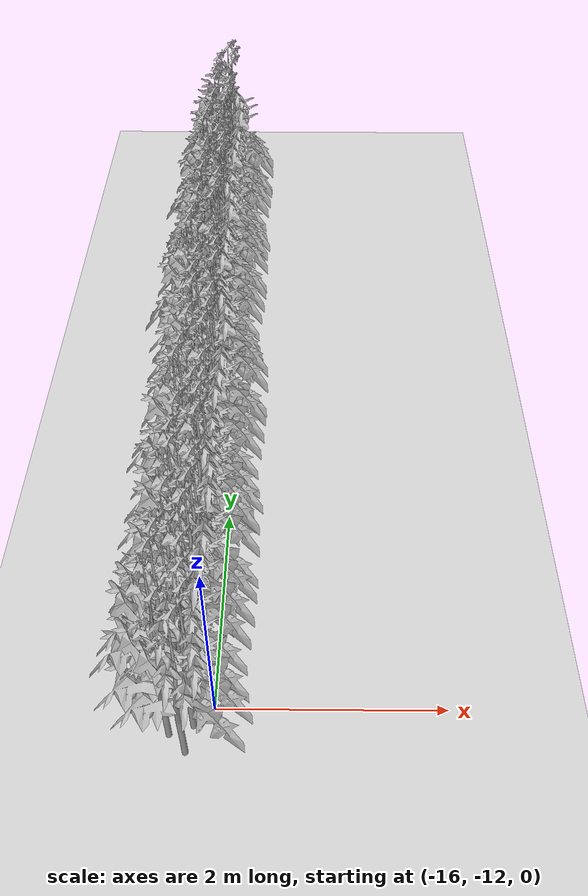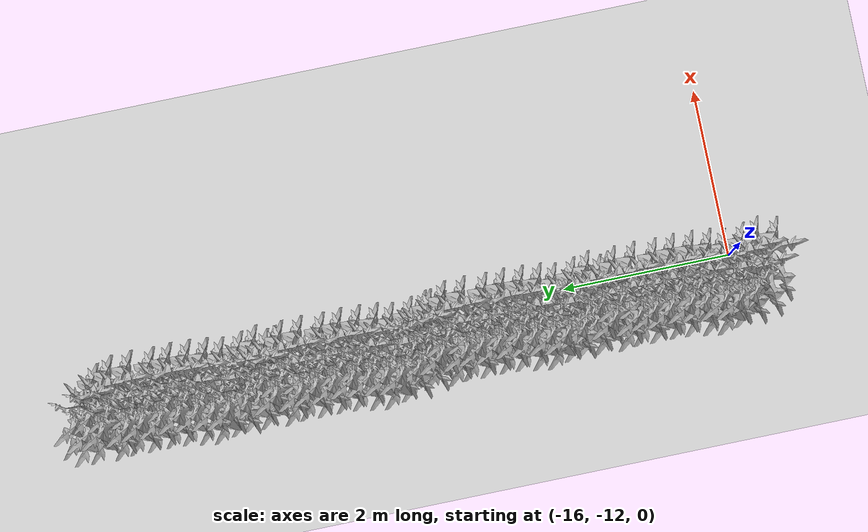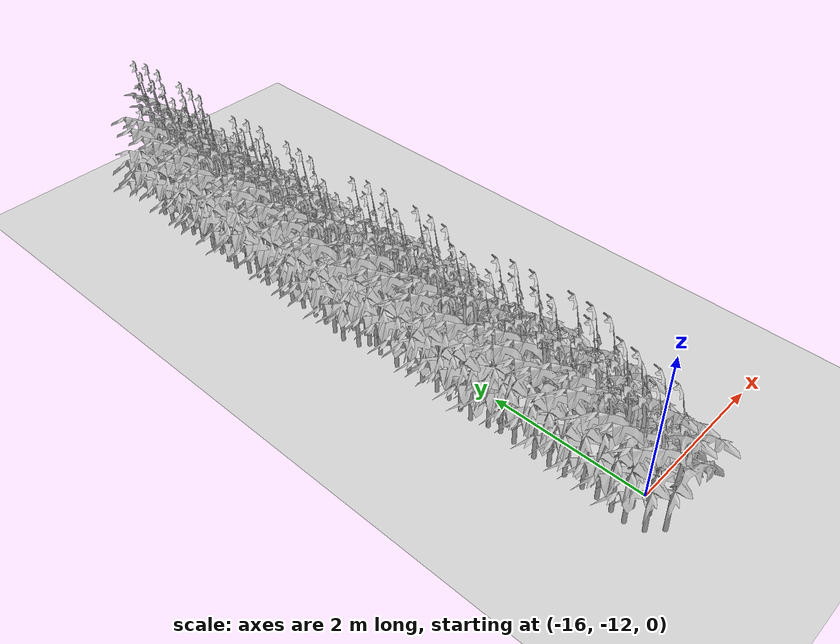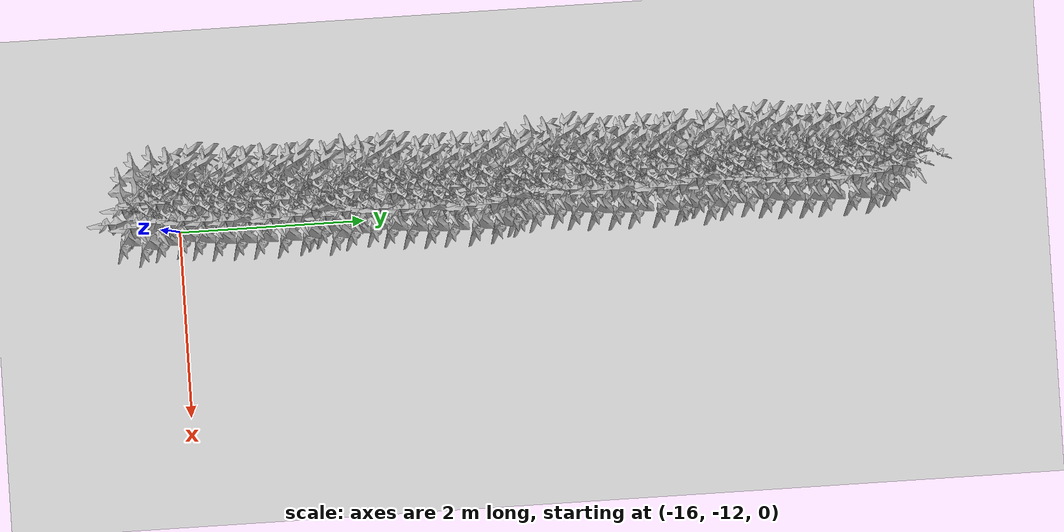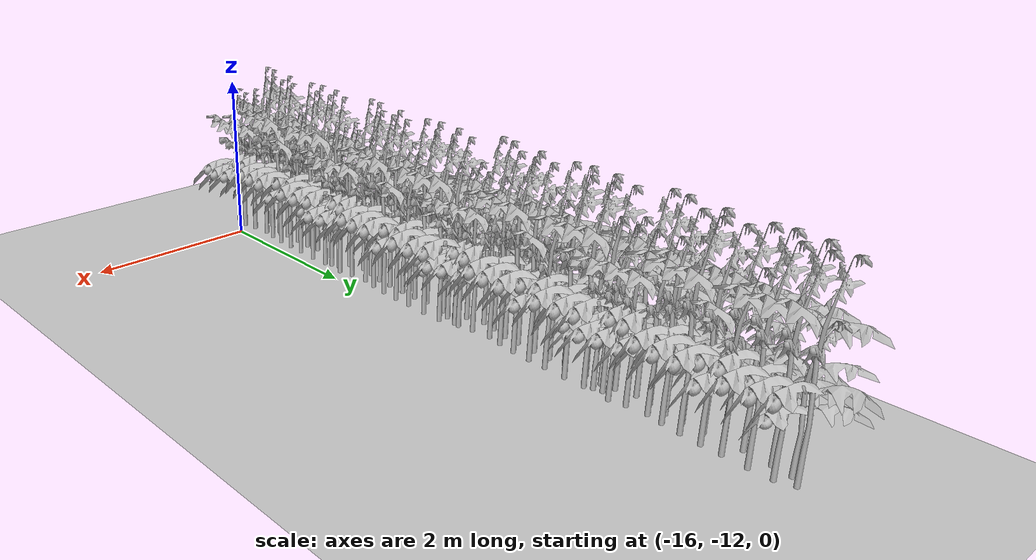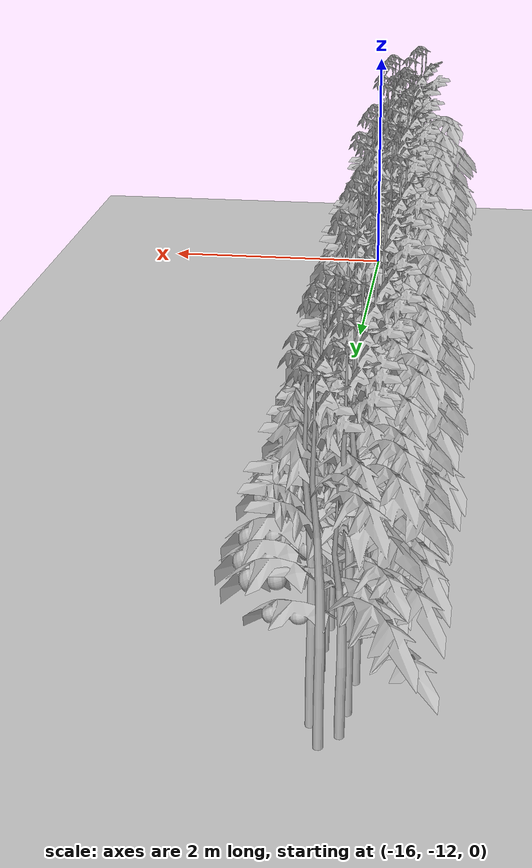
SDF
<sdf version="1.6">
 <world name="default">
  <model name="ground_plane">
   <static>1</static>
   <link name="link">
    <collision name="collision">
     <geometry><plane><normal>0 0 1</normal><size>100 100</size></plane></geometry>
     <surface>
      <contact><collide_bitmask>65535</collide_bitmask></contact>
      <friction><ode><mu>100</mu><mu2>50</mu2></ode></friction>
     </surface>
    </collision>
    <visual name="visual">
     <cast_shadows>0</cast_shadows>
     <geometry><plane><normal>0 0 1</normal><size>100 100</size></plane></geometry>
     <material>
      <script><uri>file://media/materials/scripts/gazebo.material</uri><name>Gazebo/Grey</name></script>
     </material>
    </visual>
   </link>
  </model>
  <model name="MIddle_Plant_3">
   <model name="MIddle_Plant_1">
    <model name="tomato_plant_big">
     <static>1</static>
     <link name="link">
      <collision name="collision">
       <pose>0 0 0 1.5708 -0 0</pose>
       <geometry><mesh><scale>0.5 0.6 0.5</scale><uri>model://stick/meshes/stick.dae</uri></mesh></geometry>
      </collision>
      <visual name="visual">
       <geometry>
        <mesh><scale>5e-06 5e-06 7e-06</scale><uri>model://tomato_plant_big/meshes/tomato-plant.dae</uri></mesh>
       </geometry>
      </visual>
     </link>
     <pose>-0.144318 -0.693607 -0 0 -0 0</pose>
    </model>
    <model name="tomato_plant_big_0">
     <static>1</static>
     <link name="link">
      <collision name="collision">
       <pose>0 0 0 1.5708 -0 0</pose>
       <geometry><mesh><scale>0.5 0.6 0.5</scale><uri>model://stick/meshes/stick.dae</uri></mesh></geometry>
      </collision>
      <visual name="visual">
       <geometry>
        <mesh><scale>5e-06 5e-06 7e-06</scale><uri>model://tomato_plant_big/meshes/tomato-plant.dae</uri></mesh>
       </geometry>
      </visual>
     </link>
     <pose>-0.11784 -0.519827 0 0 -0 0</pose>
    </model>
    <model name="tomato_plant_big_1">
     <static>1</static>
     <link name="link">
      <collision name="collision">
       <pose>0 0 0 1.5708 -0 0</pose>
       <geometry><mesh><scale>0.5 0.6 0.5</scale><uri>model://stick/meshes/stick.dae</uri></mesh></geometry>
      </collision>
      <visual name="visual">
       <geometry>
        <mesh><scale>5e-06 5e-06 7e-06</scale><uri>model://tomato_plant_big/meshes/tomato-plant.dae</uri></mesh>
       </geometry>
      </visual>
     </link>
     <pose>0.073755 -0.247584 0 0 -0 0</pose>
    </model>
    <model name="tomato_plant_big_10">
     <static>1</static>
     <link name="link">
      <collision name="collision">
       <pose>0 0 0 1.5708 -0 0</pose>
       <geometry><mesh><scale>0.5 0.6 0.5</scale><uri>model://stick/meshes/stick.dae</uri></mesh></geometry>
      </collision>
      <visual name="visual">
       <geometry>
        <mesh><scale>5e-06 5e-06 7e-06</scale><uri>model://tomato_plant_big/meshes/tomato-plant.dae</uri></mesh>
       </geometry>
      </visual>
     </link>
     <pose>0.037052 1.07094 0 0 -0 0</pose>
    </model>
    <model name="tomato_plant_big_2">
     <static>1</static>
     <link name="link">
      <collision name="collision">
       <pose>0 0 0 1.5708 -0 0</pose>
       <geometry><mesh><scale>0.5 0.6 0.5</scale><uri>model://stick/meshes/stick.dae</uri></mesh></geometry>
      </collision>
      <visual name="visual">
       <geometry>
        <mesh><scale>5e-06 5e-06 7e-06</scale><uri>model://tomato_plant_big/meshes/tomato-plant.dae</uri></mesh>
       </geometry>
      </visual>
     </link>
     <pose>-0.076926 -0.131165 0 0 -0 0</pose>
    </model>
    <model name="tomato_plant_big_3">
     <static>1</static>
     <link name="link">
      <collision name="collision">
       <pose>0 0 0 1.5708 -0 0</pose>
       <geometry><mesh><scale>0.5 0.6 0.5</scale><uri>model://stick/meshes/stick.dae</uri></mesh></geometry>
      </collision>
      <visual name="visual">
       <geometry>
        <mesh><scale>5e-06 5e-06 7e-06</scale><uri>model://tomato_plant_big/meshes/tomato-plant.dae</uri></mesh>
       </geometry>
      </visual>
     </link>
     <pose>0.093714 -0.038386 0 0 -0 0</pose>
    </model>
    <model name="tomato_plant_big_4">
     <static>1</static>
     <link name="link">
      <collision name="collision">
       <pose>0 0 0 1.5708 -0 0</pose>
       <geometry><mesh><scale>0.5 0.6 0.5</scale><uri>model://stick/meshes/stick.dae</uri></mesh></geometry>
      </collision>
      <visual name="visual">
       <geometry>
        <mesh><scale>5e-06 5e-06 7e-06</scale><uri>model://tomato_plant_big/meshes/tomato-plant.dae</uri></mesh>
       </geometry>
      </visual>
     </link>
     <pose>0.103117 0.184356 0 0 -0 0</pose>
    </model>
    <model name="tomato_plant_big_5">
     <static>1</static>
     <link name="link">
      <collision name="collision">
       <pose>0 0 0 1.5708 -0 0</pose>
       <geometry><mesh><scale>0.5 0.6 0.5</scale><uri>model://stick/meshes/stick.dae</uri></mesh></geometry>
      </collision>
      <visual name="visual">
       <geometry>
        <mesh><scale>5e-06 5e-06 7e-06</scale><uri>model://tomato_plant_big/meshes/tomato-plant.dae</uri></mesh>
       </geometry>
      </visual>
     </link>
     <pose>-0.074883 0.301479 0 0 -0 0</pose>
    </model>
    <model name="tomato_plant_big_6">
     <static>1</static>
     <link name="link">
      <collision name="collision">
       <pose>0 0 0 1.5708 -0 0</pose>
       <geometry><mesh><scale>0.5 0.6 0.5</scale><uri>model://stick/meshes/stick.dae</uri></mesh></geometry>
      </collision>
      <visual name="visual">
       <geometry>
        <mesh><scale>5e-06 5e-06 7e-06</scale><uri>model://tomato_plant_big/meshes/tomato-plant.dae</uri></mesh>
       </geometry>
      </visual>
     </link>
     <pose>-0.096921 0.484007 0 0 -0 0</pose>
    </model>
    <model name="tomato_plant_big_7">
     <static>1</static>
     <link name="link">
      <collision name="collision">
       <pose>0 0 0 1.5708 -0 0</pose>
       <geometry><mesh><scale>0.5 0.6 0.5</scale><uri>model://stick/meshes/stick.dae</uri></mesh></geometry>
      </collision>
      <visual name="visual">
       <geometry>
        <mesh><scale>5e-06 5e-06 7e-06</scale><uri>model://tomato_plant_big/meshes/tomato-plant.dae</uri></mesh>
       </geometry>
      </visual>
     </link>
     <pose>0.107491 0.653976 0 0 -0 0</pose>
    </model>
    <model name="tomato_plant_big_8">
     <static>1</static>
     <link name="link">
      <collision name="collision">
       <pose>0 0 0 1.5708 -0 0</pose>
       <geometry><mesh><scale>0.5 0.6 0.5</scale><uri>model://stick/meshes/stick.dae</uri></mesh></geometry>
      </collision>
      <visual name="visual">
       <geometry>
        <mesh><scale>5e-06 5e-06 7e-06</scale><uri>model://tomato_plant_big/meshes/tomato-plant.dae</uri></mesh>
       </geometry>
      </visual>
     </link>
     <pose>-0.07985 0.768549 0 0 -0 0</pose>
    </model>
    <model name="tomato_plant_big_9">
     <static>1</static>
     <link name="link">
      <collision name="collision">
       <pose>0 0 0 1.5708 -0 0</pose>
       <geometry><mesh><scale>0.5 0.6 0.5</scale><uri>model://stick/meshes/stick.dae</uri></mesh></geometry>
      </collision>
      <visual name="visual">
       <geometry>
        <mesh><scale>5e-06 5e-06 7e-06</scale><uri>model://tomato_plant_big/meshes/tomato-plant.dae</uri></mesh>
       </geometry>
      </visual>
     </link>
     <pose>0.098361 0.890852 0 0 -0 0</pose>
    </model>
    <model name="tomato_plant_medium">
     <static>1</static>
     <link name="link">
      <collision name="collision">
       <pose>0 0 0 1.5708 -0 0</pose>
       <geometry><mesh><scale>0.5 0.5 0.5</scale><uri>model://stick/meshes/stick.dae</uri></mesh></geometry>
      </collision>
      <visual name="visual">
       <geometry>
        <mesh><scale>5e-06 5e-06 6e-06</scale><uri>model://tomato_plant_medium/meshes/tomato-plant.dae</uri></mesh>
       </geometry>
      </visual>
     </link>
     <pose>0.056913 -1.05328 0 0 -0 0</pose>
    </model>
    <model name="tomato_plant_medium_0">
     <static>1</static>
     <link name="link">
      <collision name="collision">
       <pose>0 0 0 1.5708 -0 0</pose>
       <geometry><mesh><scale>0.5 0.5 0.5</scale><uri>model://stick/meshes/stick.dae</uri></mesh></geometry>
      </collision>
      <visual name="visual">
       <geometry>
        <mesh><scale>5e-06 5e-06 6e-06</scale><uri>model://tomato_plant_medium/meshes/tomato-plant.dae</uri></mesh>
       </geometry>
      </visual>
     </link>
     <pose>-0.092719 -0.905729 0 0 -0 0</pose>
    </model>
    <model name="tomato_plant_medium_1">
     <static>1</static>
     <link name="link">
      <collision name="collision">
       <pose>0 0 0 1.5708 -0 0</pose>
       <geometry><mesh><scale>0.5 0.5 0.5</scale><uri>model://stick/meshes/stick.dae</uri></mesh></geometry>
      </collision>
      <visual name="visual">
       <geometry>
        <mesh><scale>5e-06 5e-06 6e-06</scale><uri>model://tomato_plant_medium/meshes/tomato-plant.dae</uri></mesh>
       </geometry>
      </visual>
     </link>
     <pose>0.108962 -0.829637 0 0 -0 0</pose>
    </model>
    <model name="tomato_plant_medium_2">
     <static>1</static>
     <link name="link">
      <collision name="collision">
       <pose>0 0 0 1.5708 -0 0</pose>
       <geometry><mesh><scale>0.5 0.5 0.5</scale><uri>model://stick/meshes/stick.dae</uri></mesh></geometry>
      </collision>
      <visual name="visual">
       <geometry>
        <mesh><scale>5e-06 5e-06 6e-06</scale><uri>model://tomato_plant_medium/meshes/tomato-plant.dae</uri></mesh>
       </geometry>
      </visual>
     </link>
     <pose>0.071216 -0.652507 0 0 -0 0</pose>
    </model>
    <model name="tomato_plant_medium_3">
     <static>1</static>
     <link name="link">
      <collision name="collision">
       <pose>0 0 0 1.5708 -0 0</pose>
       <geometry><mesh><scale>0.5 0.5 0.5</scale><uri>model://stick/meshes/stick.dae</uri></mesh></geometry>
      </collision>
      <visual name="visual">
       <geometry>
        <mesh><scale>5e-06 5e-06 6e-06</scale><uri>model://tomato_plant_medium/meshes/tomato-plant.dae</uri></mesh>
       </geometry>
      </visual>
     </link>
     <pose>0.047335 -0.423046 0 0 -0 0</pose>
    </model>
    <model name="tomato_plant_medium_4">
     <static>1</static>
     <link name="link">
      <collision name="collision">
       <pose>0 0 0 1.5708 -0 0</pose>
       <geometry><mesh><scale>0.5 0.5 0.5</scale><uri>model://stick/meshes/stick.dae</uri></mesh></geometry>
      </collision>
      <visual name="visual">
       <geometry>
        <mesh><scale>5e-06 5e-06 6e-06</scale><uri>model://tomato_plant_medium/meshes/tomato-plant.dae</uri></mesh>
       </geometry>
      </visual>
     </link>
     <pose>-0.081012 -0.320324 0 0 -0 0</pose>
    </model>
    <model name="tomato_plant_medium_5">
     <static>1</static>
     <link name="link">
      <collision name="collision">
       <pose>0 0 0 1.5708 -0 0</pose>
       <geometry><mesh><scale>0.5 0.5 0.5</scale><uri>model://stick/meshes/stick.dae</uri></mesh></geometry>
      </collision>
      <visual name="visual">
       <geometry>
        <mesh><scale>5e-06 5e-06 6e-06</scale><uri>model://tomato_plant_medium/meshes/tomato-plant.dae</uri></mesh>
       </geometry>
      </visual>
     </link>
     <pose>-0.07452 0.095988 0 0 -0 0</pose>
    </model>
    <model name="tomato_plant_medium_6">
     <static>1</static>
     <link name="link">
      <collision name="collision">
       <pose>0 0 0 1.5708 -0 0</pose>
       <geometry><mesh><scale>0.5 0.5 0.5</scale><uri>model://stick/meshes/stick.dae</uri></mesh></geometry>
      </collision>
      <visual name="visual">
       <geometry>
        <mesh><scale>5e-06 5e-06 6e-06</scale><uri>model://tomato_plant_medium/meshes/tomato-plant.dae</uri></mesh>
       </geometry>
      </visual>
     </link>
     <pose>0.101424 0.395443 0 0 -0 0</pose>
    </model>
    <model name="tomato_plant_small">
     <static>1</static>
     <link name="link">
      <collision name="collision">
       <pose>0 0 0 1.5708 -0 0</pose>
       <geometry><mesh><scale>0.5 0.45 0.5</scale><uri>model://stick/meshes/stick.dae</uri></mesh></geometry>
      </collision>
      <visual name="visual">
       <geometry>
        <mesh><scale>5e-06 5e-06 5e-06</scale><uri>model://tomato_plant_small/meshes/tomato-plant.dae</uri></mesh>
       </geometry>
      </visual>
     </link>
     <pose>-0.060351 0.969512 0 0 -0 0</pose>
    </model>
    <static>0</static>
    <pose>0.040757 1.77284 0 0 -0 0</pose>
   </model>
   <model name="MIddle_Plant_2">
    <model name="MIddle_Plant_1">
     <model name="tomato_plant_big">
      <static>1</static>
      <link name="link">
       <collision name="collision">
        <pose>0 0 0 1.5708 -0 0</pose>
        <geometry><mesh><scale>0.5 0.6 0.5</scale><uri>model://stick/meshes/stick.dae</uri></mesh></geometry>
       </collision>
       <visual name="visual">
        <geometry>
         <mesh><scale>5e-06 5e-06 7e-06</scale><uri>model://tomato_plant_big/meshes/tomato-plant.dae</uri></mesh>
        </geometry>
       </visual>
      </link>
      <pose>-0.144318 -0.693607 -0 0 -0 0</pose>
     </model>
     <model name="tomato_plant_big_0">
      <static>1</static>
      <link name="link">
       <collision name="collision">
        <pose>0 0 0 1.5708 -0 0</pose>
        <geometry><mesh><scale>0.5 0.6 0.5</scale><uri>model://stick/meshes/stick.dae</uri></mesh></geometry>
       </collision>
       <visual name="visual">
        <geometry>
         <mesh><scale>5e-06 5e-06 7e-06</scale><uri>model://tomato_plant_big/meshes/tomato-plant.dae</uri></mesh>
        </geometry>
       </visual>
      </link>
      <pose>-0.11784 -0.519827 0 0 -0 0</pose>
     </model>
     <model name="tomato_plant_big_1">
      <static>1</static>
      <link name="link">
       <collision name="collision">
        <pose>0 0 0 1.5708 -0 0</pose>
        <geometry><mesh><scale>0.5 0.6 0.5</scale><uri>model://stick/meshes/stick.dae</uri></mesh></geometry>
       </collision>
       <visual name="visual">
        <geometry>
         <mesh><scale>5e-06 5e-06 7e-06</scale><uri>model://tomato_plant_big/meshes/tomato-plant.dae</uri></mesh>
        </geometry>
       </visual>
      </link>
      <pose>0.073755 -0.247584 0 0 -0 0</pose>
     </model>
     <model name="tomato_plant_big_10">
      <static>1</static>
      <link name="link">
       <collision name="collision">
        <pose>0 0 0 1.5708 -0 0</pose>
        <geometry><mesh><scale>0.5 0.6 0.5</scale><uri>model://stick/meshes/stick.dae</uri></mesh></geometry>
       </collision>
       <visual name="visual">
        <geometry>
         <mesh><scale>5e-06 5e-06 7e-06</scale><uri>model://tomato_plant_big/meshes/tomato-plant.dae</uri></mesh>
        </geometry>
       </visual>
      </link>
      <pose>0.037052 1.07094 0 0 -0 0</pose>
     </model>
     <model name="tomato_plant_big_2">
      <static>1</static>
      <link name="link">
       <collision name="collision">
        <pose>0 0 0 1.5708 -0 0</pose>
        <geometry><mesh><scale>0.5 0.6 0.5</scale><uri>model://stick/meshes/stick.dae</uri></mesh></geometry>
       </collision>
       <visual name="visual">
        <geometry>
         <mesh><scale>5e-06 5e-06 7e-06</scale><uri>model://tomato_plant_big/meshes/tomato-plant.dae</uri></mesh>
        </geometry>
       </visual>
      </link>
      <pose>-0.076926 -0.131165 0 0 -0 0</pose>
     </model>
     <model name="tomato_plant_big_3">
      <static>1</static>
      <link name="link">
       <collision name="collision">
        <pose>0 0 0 1.5708 -0 0</pose>
        <geometry><mesh><scale>0.5 0.6 0.5</scale><uri>model://stick/meshes/stick.dae</uri></mesh></geometry>
       </collision>
       <visual name="visual">
        <geometry>
         <mesh><scale>5e-06 5e-06 7e-06</scale><uri>model://tomato_plant_big/meshes/tomato-plant.dae</uri></mesh>
        </geometry>
       </visual>
      </link>
      <pose>0.093714 -0.038386 0 0 -0 0</pose>
     </model>
     <model name="tomato_plant_big_4">
      <static>1</static>
      <link name="link">
       <collision name="collision">
        <pose>0 0 0 1.5708 -0 0</pose>
        <geometry><mesh><scale>0.5 0.6 0.5</scale><uri>model://stick/meshes/stick.dae</uri></mesh></geometry>
       </collision>
       <visual name="visual">
        <geometry>
         <mesh><scale>5e-06 5e-06 7e-06</scale><uri>model://tomato_plant_big/meshes/tomato-plant.dae</uri></mesh>
        </geometry>
       </visual>
      </link>
      <pose>0.103117 0.184356 0 0 -0 0</pose>
     </model>
     <model name="tomato_plant_big_5">
      <static>1</static>
      <link name="link">
       <collision name="collision">
        <pose>0 0 0 1.5708 -0 0</pose>
        <geometry><mesh><scale>0.5 0.6 0.5</scale><uri>model://stick/meshes/stick.dae</uri></mesh></geometry>
       </collision>
       <visual name="visual">
        <geometry>
         <mesh><scale>5e-06 5e-06 7e-06</scale><uri>model://tomato_plant_big/meshes/tomato-plant.dae</uri></mesh>
        </geometry>
       </visual>
      </link>
      <pose>-0.074883 0.301479 0 0 -0 0</pose>
     </model>
     <model name="tomato_plant_big_6">
      <static>1</static>
      <link name="link">
       <collision name="collision">
        <pose>0 0 0 1.5708 -0 0</pose>
        <geometry><mesh><scale>0.5 0.6 0.5</scale><uri>model://stick/meshes/stick.dae</uri></mesh></geometry>
       </collision>
       <visual name="visual">
        <geometry>
         <mesh><scale>5e-06 5e-06 7e-06</scale><uri>model://tomato_plant_big/meshes/tomato-plant.dae</uri></mesh>
        </geometry>
       </visual>
      </link>
      <pose>-0.096921 0.484007 0 0 -0 0</pose>
     </model>
     <model name="tomato_plant_big_7">
      <static>1</static>
      <link name="link">
       <collision name="collision">
        <pose>0 0 0 1.5708 -0 0</pose>
        <geometry><mesh><scale>0.5 0.6 0.5</scale><uri>model://stick/meshes/stick.dae</uri></mesh></geometry>
       </collision>
       <visual name="visual">
        <geometry>
         <mesh><scale>5e-06 5e-06 7e-06</scale><uri>model://tomato_plant_big/meshes/tomato-plant.dae</uri></mesh>
        </geometry>
       </visual>
      </link>
      <pose>0.107491 0.653976 0 0 -0 0</pose>
     </model>
     <model name="tomato_plant_big_8">
      <static>1</static>
      <link name="link">
       <collision name="collision">
        <pose>0 0 0 1.5708 -0 0</pose>
        <geometry><mesh><scale>0.5 0.6 0.5</scale><uri>model://stick/meshes/stick.dae</uri></mesh></geometry>
       </collision>
       <visual name="visual">
        <geometry>
         <mesh><scale>5e-06 5e-06 7e-06</scale><uri>model://tomato_plant_big/meshes/tomato-plant.dae</uri></mesh>
        </geometry>
       </visual>
      </link>
      <pose>-0.07985 0.768549 0 0 -0 0</pose>
     </model>
     <model name="tomato_plant_big_9">
      <static>1</static>
      <link name="link">
       <collision name="collision">
        <pose>0 0 0 1.5708 -0 0</pose>
        <geometry><mesh><scale>0.5 0.6 0.5</scale><uri>model://stick/meshes/stick.dae</uri></mesh></geometry>
       </collision>
       <visual name="visual">
        <geometry>
         <mesh><scale>5e-06 5e-06 7e-06</scale><uri>model://tomato_plant_big/meshes/tomato-plant.dae</uri></mesh>
        </geometry>
       </visual>
      </link>
      <pose>0.098361 0.890852 0 0 -0 0</pose>
     </model>
     <model name="tomato_plant_medium">
      <static>1</static>
      <link name="link">
       <collision name="collision">
        <pose>0 0 0 1.5708 -0 0</pose>
        <geometry><mesh><scale>0.5 0.5 0.5</scale><uri>model://stick/meshes/stick.dae</uri></mesh></geometry>
       </collision>
       <visual name="visual">
        <geometry>
         <mesh><scale>5e-06 5e-06 6e-06</scale><uri>model://tomato_plant_medium/meshes/tomato-plant.dae</uri></mesh>
        </geometry>
       </visual>
      </link>
      <pose>0.056913 -1.05328 0 0 -0 0</pose>
     </model>
     <model name="tomato_plant_medium_0">
      <static>1</static>
      <link name="link">
       <collision name="collision">
        <pose>0 0 0 1.5708 -0 0</pose>
        <geometry><mesh><scale>0.5 0.5 0.5</scale><uri>model://stick/meshes/stick.dae</uri></mesh></geometry>
       </collision>
       <visual name="visual">
        <geometry>
         <mesh><scale>5e-06 5e-06 6e-06</scale><uri>model://tomato_plant_medium/meshes/tomato-plant.dae</uri></mesh>
        </geometry>
       </visual>
      </link>
      <pose>-0.092719 -0.905729 0 0 -0 0</pose>
     </model>
     <model name="tomato_plant_medium_1">
      <static>1</static>
      <link name="link">
       <collision name="collision">
        <pose>0 0 0 1.5708 -0 0</pose>
        <geometry><mesh><scale>0.5 0.5 0.5</scale><uri>model://stick/meshes/stick.dae</uri></mesh></geometry>
       </collision>
       <visual name="visual">
        <geometry>
         <mesh><scale>5e-06 5e-06 6e-06</scale><uri>model://tomato_plant_medium/meshes/tomato-plant.dae</uri></mesh>
        </geometry>
       </visual>
      </link>
      <pose>0.108962 -0.829637 0 0 -0 0</pose>
     </model>
     <model name="tomato_plant_medium_2">
      <static>1</static>
      <link name="link">
       <collision name="collision">
        <pose>0 0 0 1.5708 -0 0</pose>
        <geometry><mesh><scale>0.5 0.5 0.5</scale><uri>model://stick/meshes/stick.dae</uri></mesh></geometry>
       </collision>
       <visual name="visual">
        <geometry>
         <mesh><scale>5e-06 5e-06 6e-06</scale><uri>model://tomato_plant_medium/meshes/tomato-plant.dae</uri></mesh>
        </geometry>
       </visual>
      </link>
      <pose>0.071216 -0.652507 0 0 -0 0</pose>
     </model>
     <model name="tomato_plant_medium_3">
      <static>1</static>
      <link name="link">
       <collision name="collision">
        <pose>0 0 0 1.5708 -0 0</pose>
        <geometry><mesh><scale>0.5 0.5 0.5</scale><uri>model://stick/meshes/stick.dae</uri></mesh></geometry>
       </collision>
       <visual name="visual">
        <geometry>
         <mesh><scale>5e-06 5e-06 6e-06</scale><uri>model://tomato_plant_medium/meshes/tomato-plant.dae</uri></mesh>
        </geometry>
       </visual>
      </link>
      <pose>0.047335 -0.423046 0 0 -0 0</pose>
     </model>
     <model name="tomato_plant_medium_4">
      <static>1</static>
      <link name="link">
       <collision name="collision">
        <pose>0 0 0 1.5708 -0 0</pose>
        <geometry><mesh><scale>0.5 0.5 0.5</scale><uri>model://stick/meshes/stick.dae</uri></mesh></geometry>
       </collision>
       <visual name="visual">
        <geometry>
         <mesh><scale>5e-06 5e-06 6e-06</scale><uri>model://tomato_plant_medium/meshes/tomato-plant.dae</uri></mesh>
        </geometry>
       </visual>
      </link>
      <pose>-0.081012 -0.320324 0 0 -0 0</pose>
     </model>
     <model name="tomato_plant_medium_5">
      <static>1</static>
      <link name="link">
       <collision name="collision">
        <pose>0 0 0 1.5708 -0 0</pose>
        <geometry><mesh><scale>0.5 0.5 0.5</scale><uri>model://stick/meshes/stick.dae</uri></mesh></geometry>
       </collision>
       <visual name="visual">
        <geometry>
         <mesh><scale>5e-06 5e-06 6e-06</scale><uri>model://tomato_plant_medium/meshes/tomato-plant.dae</uri></mesh>
        </geometry>
       </visual>
      </link>
      <pose>-0.07452 0.095988 0 0 -0 0</pose>
     </model>
     <model name="tomato_plant_medium_6">
      <static>1</static>
      <link name="link">
       <collision name="collision">
        <pose>0 0 0 1.5708 -0 0</pose>
        <geometry><mesh><scale>0.5 0.5 0.5</scale><uri>model://stick/meshes/stick.dae</uri></mesh></geometry>
       </collision>
       <visual name="visual">
        <geometry>
         <mesh><scale>5e-06 5e-06 6e-06</scale><uri>model://tomato_plant_medium/meshes/tomato-plant.dae</uri></mesh>
        </geometry>
       </visual>
      </link>
      <pose>0.101424 0.395443 0 0 -0 0</pose>
     </model>
     <model name="tomato_plant_small">
      <static>1</static>
      <link name="link">
       <collision name="collision">
        <pose>0 0 0 1.5708 -0 0</pose>
        <geometry><mesh><scale>0.5 0.45 0.5</scale><uri>model://stick/meshes/stick.dae</uri></mesh></geometry>
       </collision>
       <visual name="visual">
        <geometry>
         <mesh><scale>5e-06 5e-06 5e-06</scale><uri>model://tomato_plant_small/meshes/tomato-plant.dae</uri></mesh>
        </geometry>
       </visual>
      </link>
      <pose>-0.060351 0.969512 0 0 -0 0</pose>
     </model>
     <static>0</static>
     <pose>0.763113 0.028917 0 0 -0 0</pose>
    </model>
    <model name="tomato_plant_big">
     <static>1</static>
     <link name="link">
      <collision name="collision">
       <pose>0 0 0 1.5708 -0 0</pose>
       <geometry><mesh><scale>0.5 0.6 0.5</scale><uri>model://stick/meshes/stick.dae</uri></mesh></geometry>
      </collision>
      <visual name="visual">
       <geometry>
        <mesh><scale>5e-06 5e-06 7e-06</scale><uri>model://tomato_plant_big/meshes/tomato-plant.dae</uri></mesh>
       </geometry>
      </visual>
     </link>
     <pose>0.613724 -2.69399 -0 0 -0 0</pose>
    </model>
    <model name="tomato_plant_big_0">
     <static>1</static>
     <link name="link">
      <collision name="collision">
       <pose>0 0 0 1.5708 -0 0</pose>
       <geometry><mesh><scale>0.5 0.6 0.5</scale><uri>model://stick/meshes/stick.dae</uri></mesh></geometry>
      </collision>
      <visual name="visual">
       <geometry>
        <mesh><scale>5e-06 5e-06 7e-06</scale><uri>model://tomato_plant_big/meshes/tomato-plant.dae</uri></mesh>
       </geometry>
      </visual>
     </link>
     <pose>0.640202 -2.52021 0 0 -0 0</pose>
    </model>
    <model name="tomato_plant_big_1">
     <static>1</static>
     <link name="link">
      <collision name="collision">
       <pose>0 0 0 1.5708 -0 0</pose>
       <geometry><mesh><scale>0.5 0.6 0.5</scale><uri>model://stick/meshes/stick.dae</uri></mesh></geometry>
      </collision>
      <visual name="visual">
       <geometry>
        <mesh><scale>5e-06 5e-06 7e-06</scale><uri>model://tomato_plant_big/meshes/tomato-plant.dae</uri></mesh>
       </geometry>
      </visual>
     </link>
     <pose>0.831797 -2.24797 0 0 -0 0</pose>
    </model>
    <model name="tomato_plant_big_10">
     <static>1</static>
     <link name="link">
      <collision name="collision">
       <pose>0 0 0 1.5708 -0 0</pose>
       <geometry><mesh><scale>0.5 0.6 0.5</scale><uri>model://stick/meshes/stick.dae</uri></mesh></geometry>
      </collision>
      <visual name="visual">
       <geometry>
        <mesh><scale>5e-06 5e-06 7e-06</scale><uri>model://tomato_plant_big/meshes/tomato-plant.dae</uri></mesh>
       </geometry>
      </visual>
     </link>
     <pose>0.795094 -0.929446 0 0 -0 0</pose>
    </model>
    <model name="tomato_plant_big_2">
     <static>1</static>
     <link name="link">
      <collision name="collision">
       <pose>0 0 0 1.5708 -0 0</pose>
       <geometry><mesh><scale>0.5 0.6 0.5</scale><uri>model://stick/meshes/stick.dae</uri></mesh></geometry>
      </collision>
      <visual name="visual">
       <geometry>
        <mesh><scale>5e-06 5e-06 7e-06</scale><uri>model://tomato_plant_big/meshes/tomato-plant.dae</uri></mesh>
       </geometry>
      </visual>
     </link>
     <pose>0.681116 -2.13155 0 0 -0 0</pose>
    </model>
    <model name="tomato_plant_big_3">
     <static>1</static>
     <link name="link">
      <collision name="collision">
       <pose>0 0 0 1.5708 -0 0</pose>
       <geometry><mesh><scale>0.5 0.6 0.5</scale><uri>model://stick/meshes/stick.dae</uri></mesh></geometry>
      </collision>
      <visual name="visual">
       <geometry>
        <mesh><scale>5e-06 5e-06 7e-06</scale><uri>model://tomato_plant_big/meshes/tomato-plant.dae</uri></mesh>
       </geometry>
      </visual>
     </link>
     <pose>0.851755 -2.03877 0 0 -0 0</pose>
    </model>
    <model name="tomato_plant_big_4">
     <static>1</static>
     <link name="link">
      <collision name="collision">
       <pose>0 0 0 1.5708 -0 0</pose>
       <geometry><mesh><scale>0.5 0.6 0.5</scale><uri>model://stick/meshes/stick.dae</uri></mesh></geometry>
      </collision>
      <visual name="visual">
       <geometry>
        <mesh><scale>5e-06 5e-06 7e-06</scale><uri>model://tomato_plant_big/meshes/tomato-plant.dae</uri></mesh>
       </geometry>
      </visual>
     </link>
     <pose>0.861158 -1.81603 0 0 -0 0</pose>
    </model>
    <model name="tomato_plant_big_5">
     <static>1</static>
     <link name="link">
      <collision name="collision">
       <pose>0 0 0 1.5708 -0 0</pose>
       <geometry><mesh><scale>0.5 0.6 0.5</scale><uri>model://stick/meshes/stick.dae</uri></mesh></geometry>
      </collision>
      <visual name="visual">
       <geometry>
        <mesh><scale>5e-06 5e-06 7e-06</scale><uri>model://tomato_plant_big/meshes/tomato-plant.dae</uri></mesh>
       </geometry>
      </visual>
     </link>
     <pose>0.683158 -1.69891 0 0 -0 0</pose>
    </model>
    <model name="tomato_plant_big_6">
     <static>1</static>
     <link name="link">
      <collision name="collision">
       <pose>0 0 0 1.5708 -0 0</pose>
       <geometry><mesh><scale>0.5 0.6 0.5</scale><uri>model://stick/meshes/stick.dae</uri></mesh></geometry>
      </collision>
      <visual name="visual">
       <geometry>
        <mesh><scale>5e-06 5e-06 7e-06</scale><uri>model://tomato_plant_big/meshes/tomato-plant.dae</uri></mesh>
       </geometry>
      </visual>
     </link>
     <pose>0.66112 -1.51638 0 0 -0 0</pose>
    </model>
    <model name="tomato_plant_big_7">
     <static>1</static>
     <link name="link">
      <collision name="collision">
       <pose>0 0 0 1.5708 -0 0</pose>
       <geometry><mesh><scale>0.5 0.6 0.5</scale><uri>model://stick/meshes/stick.dae</uri></mesh></geometry>
      </collision>
      <visual name="visual">
       <geometry>
        <mesh><scale>5e-06 5e-06 7e-06</scale><uri>model://tomato_plant_big/meshes/tomato-plant.dae</uri></mesh>
       </geometry>
      </visual>
     </link>
     <pose>0.865532 -1.34641 0 0 -0 0</pose>
    </model>
    <model name="tomato_plant_big_8">
     <static>1</static>
     <link name="link">
      <collision name="collision">
       <pose>0 0 0 1.5708 -0 0</pose>
       <geometry><mesh><scale>0.5 0.6 0.5</scale><uri>model://stick/meshes/stick.dae</uri></mesh></geometry>
      </collision>
      <visual name="visual">
       <geometry>
        <mesh><scale>5e-06 5e-06 7e-06</scale><uri>model://tomato_plant_big/meshes/tomato-plant.dae</uri></mesh>
       </geometry>
      </visual>
     </link>
     <pose>0.678192 -1.23184 0 0 -0 0</pose>
    </model>
    <model name="tomato_plant_big_9">
     <static>1</static>
     <link name="link">
      <collision name="collision">
       <pose>0 0 0 1.5708 -0 0</pose>
       <geometry><mesh><scale>0.5 0.6 0.5</scale><uri>model://stick/meshes/stick.dae</uri></mesh></geometry>
      </collision>
      <visual name="visual">
       <geometry>
        <mesh><scale>5e-06 5e-06 7e-06</scale><uri>model://tomato_plant_big/meshes/tomato-plant.dae</uri></mesh>
       </geometry>
      </visual>
     </link>
     <pose>0.856402 -1.10953 0 0 -0 0</pose>
    </model>
    <model name="tomato_plant_medium">
     <static>1</static>
     <link name="link">
      <collision name="collision">
       <pose>0 0 0 1.5708 -0 0</pose>
       <geometry><mesh><scale>0.5 0.5 0.5</scale><uri>model://stick/meshes/stick.dae</uri></mesh></geometry>
      </collision>
      <visual name="visual">
       <geometry>
        <mesh><scale>5e-06 5e-06 6e-06</scale><uri>model://tomato_plant_medium/meshes/tomato-plant.dae</uri></mesh>
       </geometry>
      </visual>
     </link>
     <pose>0.814955 -3.05367 0 0 -0 0</pose>
    </model>
    <model name="tomato_plant_medium_0">
     <static>1</static>
     <link name="link">
      <collision name="collision">
       <pose>0 0 0 1.5708 -0 0</pose>
       <geometry><mesh><scale>0.5 0.5 0.5</scale><uri>model://stick/meshes/stick.dae</uri></mesh></geometry>
      </collision>
      <visual name="visual">
       <geometry>
        <mesh><scale>5e-06 5e-06 6e-06</scale><uri>model://tomato_plant_medium/meshes/tomato-plant.dae</uri></mesh>
       </geometry>
      </visual>
     </link>
     <pose>0.665322 -2.90611 0 0 -0 0</pose>
    </model>
    <model name="tomato_plant_medium_1">
     <static>1</static>
     <link name="link">
      <collision name="collision">
       <pose>0 0 0 1.5708 -0 0</pose>
       <geometry><mesh><scale>0.5 0.5 0.5</scale><uri>model://stick/meshes/stick.dae</uri></mesh></geometry>
      </collision>
      <visual name="visual">
       <geometry>
        <mesh><scale>5e-06 5e-06 6e-06</scale><uri>model://tomato_plant_medium/meshes/tomato-plant.dae</uri></mesh>
       </geometry>
      </visual>
     </link>
     <pose>0.867004 -2.83002 0 0 -0 0</pose>
    </model>
    <model name="tomato_plant_medium_2">
     <static>1</static>
     <link name="link">
      <collision name="collision">
       <pose>0 0 0 1.5708 -0 0</pose>
       <geometry><mesh><scale>0.5 0.5 0.5</scale><uri>model://stick/meshes/stick.dae</uri></mesh></geometry>
      </collision>
      <visual name="visual">
       <geometry>
        <mesh><scale>5e-06 5e-06 6e-06</scale><uri>model://tomato_plant_medium/meshes/tomato-plant.dae</uri></mesh>
       </geometry>
      </visual>
     </link>
     <pose>0.829257 -2.65289 0 0 -0 0</pose>
    </model>
    <model name="tomato_plant_medium_3">
     <static>1</static>
     <link name="link">
      <collision name="collision">
       <pose>0 0 0 1.5708 -0 0</pose>
       <geometry><mesh><scale>0.5 0.5 0.5</scale><uri>model://stick/meshes/stick.dae</uri></mesh></geometry>
      </collision>
      <visual name="visual">
       <geometry>
        <mesh><scale>5e-06 5e-06 6e-06</scale><uri>model://tomato_plant_medium/meshes/tomato-plant.dae</uri></mesh>
       </geometry>
      </visual>
     </link>
     <pose>0.805376 -2.42343 0 0 -0 0</pose>
    </model>
    <model name="tomato_plant_medium_4">
     <static>1</static>
     <link name="link">
      <collision name="collision">
       <pose>0 0 0 1.5708 -0 0</pose>
       <geometry><mesh><scale>0.5 0.5 0.5</scale><uri>model://stick/meshes/stick.dae</uri></mesh></geometry>
      </collision>
      <visual name="visual">
       <geometry>
        <mesh><scale>5e-06 5e-06 6e-06</scale><uri>model://tomato_plant_medium/meshes/tomato-plant.dae</uri></mesh>
       </geometry>
      </visual>
     </link>
     <pose>0.67703 -2.32071 0 0 -0 0</pose>
    </model>
    <model name="tomato_plant_medium_5">
     <static>1</static>
     <link name="link">
      <collision name="collision">
       <pose>0 0 0 1.5708 -0 0</pose>
       <geometry><mesh><scale>0.5 0.5 0.5</scale><uri>model://stick/meshes/stick.dae</uri></mesh></geometry>
      </collision>
      <visual name="visual">
       <geometry>
        <mesh><scale>5e-06 5e-06 6e-06</scale><uri>model://tomato_plant_medium/meshes/tomato-plant.dae</uri></mesh>
       </geometry>
      </visual>
     </link>
     <pose>0.683522 -1.9044 0 0 -0 0</pose>
    </model>
    <model name="tomato_plant_medium_6">
     <static>1</static>
     <link name="link">
      <collision name="collision">
       <pose>0 0 0 1.5708 -0 0</pose>
       <geometry><mesh><scale>0.5 0.5 0.5</scale><uri>model://stick/meshes/stick.dae</uri></mesh></geometry>
      </collision>
      <visual name="visual">
       <geometry>
        <mesh><scale>5e-06 5e-06 6e-06</scale><uri>model://tomato_plant_medium/meshes/tomato-plant.dae</uri></mesh>
       </geometry>
      </visual>
     </link>
     <pose>0.859466 -1.60494 0 0 -0 0</pose>
    </model>
    <model name="tomato_plant_small">
     <static>1</static>
     <link name="link">
      <collision name="collision">
       <pose>0 0 0 1.5708 -0 0</pose>
       <geometry><mesh><scale>0.5 0.45 0.5</scale><uri>model://stick/meshes/stick.dae</uri></mesh></geometry>
      </collision>
      <visual name="visual">
       <geometry>
        <mesh><scale>5e-06 5e-06 5e-06</scale><uri>model://tomato_plant_small/meshes/tomato-plant.dae</uri></mesh>
       </geometry>
      </visual>
     </link>
     <pose>0.697691 -1.03087 0 0 -0 0</pose>
    </model>
    <static>0</static>
    <pose>-0.78485 5.73439 0 0 -0 0</pose>
   </model>
   <model name="tomato_plant_big">
    <static>1</static>
    <link name="link">
     <collision name="collision">
      <pose>0 0 0 1.5708 -0 0</pose>
      <geometry><mesh><scale>0.5 0.6 0.5</scale><uri>model://stick/meshes/stick.dae</uri></mesh></geometry>
     </collision>
     <visual name="visual">
      <geometry>
       <mesh><scale>5e-06 5e-06 7e-06</scale><uri>model://tomato_plant_big/meshes/tomato-plant.dae</uri></mesh>
      </geometry>
     </visual>
    </link>
    <pose>-0.108632 -0.950068 -0 0 -0 0</pose>
   </model>
   <model name="tomato_plant_big_0">
    <static>1</static>
    <link name="link">
     <collision name="collision">
      <pose>0 0 0 1.5708 -0 0</pose>
      <geometry><mesh><scale>0.5 0.6 0.5</scale><uri>model://stick/meshes/stick.dae</uri></mesh></geometry>
     </collision>
     <visual name="visual">
      <geometry>
       <mesh><scale>5e-06 5e-06 7e-06</scale><uri>model://tomato_plant_big/meshes/tomato-plant.dae</uri></mesh>
      </geometry>
     </visual>
    </link>
    <pose>-0.082154 -0.776288 0 0 -0 0</pose>
   </model>
   <model name="tomato_plant_big_1">
    <static>1</static>
    <link name="link">
     <collision name="collision">
      <pose>0 0 0 1.5708 -0 0</pose>
      <geometry><mesh><scale>0.5 0.6 0.5</scale><uri>model://stick/meshes/stick.dae</uri></mesh></geometry>
     </collision>
     <visual name="visual">
      <geometry>
       <mesh><scale>5e-06 5e-06 7e-06</scale><uri>model://tomato_plant_big/meshes/tomato-plant.dae</uri></mesh>
      </geometry>
     </visual>
    </link>
    <pose>0.109441 -0.504045 0 0 -0 0</pose>
   </model>
   <model name="tomato_plant_big_10">
    <static>1</static>
    <link name="link">
     <collision name="collision">
      <pose>0 0 0 1.5708 -0 0</pose>
      <geometry><mesh><scale>0.5 0.6 0.5</scale><uri>model://stick/meshes/stick.dae</uri></mesh></geometry>
     </collision>
     <visual name="visual">
      <geometry>
       <mesh><scale>5e-06 5e-06 7e-06</scale><uri>model://tomato_plant_big/meshes/tomato-plant.dae</uri></mesh>
      </geometry>
     </visual>
    </link>
    <pose>0.072738 0.814477 0 0 -0 0</pose>
   </model>
   <model name="tomato_plant_big_2">
    <static>1</static>
    <link name="link">
     <collision name="collision">
      <pose>0 0 0 1.5708 -0 0</pose>
      <geometry><mesh><scale>0.5 0.6 0.5</scale><uri>model://stick/meshes/stick.dae</uri></mesh></geometry>
     </collision>
     <visual name="visual">
      <geometry>
       <mesh><scale>5e-06 5e-06 7e-06</scale><uri>model://tomato_plant_big/meshes/tomato-plant.dae</uri></mesh>
      </geometry>
     </visual>
    </link>
    <pose>-0.04124 -0.387626 0 0 -0 0</pose>
   </model>
   <model name="tomato_plant_big_3">
    <static>1</static>
    <link name="link">
     <collision name="collision">
      <pose>0 0 0 1.5708 -0 0</pose>
      <geometry><mesh><scale>0.5 0.6 0.5</scale><uri>model://stick/meshes/stick.dae</uri></mesh></geometry>
     </collision>
     <visual name="visual">
      <geometry>
       <mesh><scale>5e-06 5e-06 7e-06</scale><uri>model://tomato_plant_big/meshes/tomato-plant.dae</uri></mesh>
      </geometry>
     </visual>
    </link>
    <pose>0.129399 -0.294847 0 0 -0 0</pose>
   </model>
   <model name="tomato_plant_big_4">
    <static>1</static>
    <link name="link">
     <collision name="collision">
      <pose>0 0 0 1.5708 -0 0</pose>
      <geometry><mesh><scale>0.5 0.6 0.5</scale><uri>model://stick/meshes/stick.dae</uri></mesh></geometry>
     </collision>
     <visual name="visual">
      <geometry>
       <mesh><scale>5e-06 5e-06 7e-06</scale><uri>model://tomato_plant_big/meshes/tomato-plant.dae</uri></mesh>
      </geometry>
     </visual>
    </link>
    <pose>0.138802 -0.072105 0 0 -0 0</pose>
   </model>
   <model name="tomato_plant_big_5">
    <static>1</static>
    <link name="link">
     <collision name="collision">
      <pose>0 0 0 1.5708 -0 0</pose>
      <geometry><mesh><scale>0.5 0.6 0.5</scale><uri>model://stick/meshes/stick.dae</uri></mesh></geometry>
     </collision>
     <visual name="visual">
      <geometry>
       <mesh><scale>5e-06 5e-06 7e-06</scale><uri>model://tomato_plant_big/meshes/tomato-plant.dae</uri></mesh>
      </geometry>
     </visual>
    </link>
    <pose>-0.039198 0.045018 0 0 -0 0</pose>
   </model>
   <model name="tomato_plant_big_6">
    <static>1</static>
    <link name="link">
     <collision name="collision">
      <pose>0 0 0 1.5708 -0 0</pose>
      <geometry><mesh><scale>0.5 0.6 0.5</scale><uri>model://stick/meshes/stick.dae</uri></mesh></geometry>
     </collision>
     <visual name="visual">
      <geometry>
       <mesh><scale>5e-06 5e-06 7e-06</scale><uri>model://tomato_plant_big/meshes/tomato-plant.dae</uri></mesh>
      </geometry>
     </visual>
    </link>
    <pose>-0.061236 0.227546 0 0 -0 0</pose>
   </model>
   <model name="tomato_plant_big_7">
    <static>1</static>
    <link name="link">
     <collision name="collision">
      <pose>0 0 0 1.5708 -0 0</pose>
      <geometry><mesh><scale>0.5 0.6 0.5</scale><uri>model://stick/meshes/stick.dae</uri></mesh></geometry>
     </collision>
     <visual name="visual">
      <geometry>
       <mesh><scale>5e-06 5e-06 7e-06</scale><uri>model://tomato_plant_big/meshes/tomato-plant.dae</uri></mesh>
      </geometry>
     </visual>
    </link>
    <pose>0.143176 0.397515 0 0 -0 0</pose>
   </model>
   <model name="tomato_plant_big_8">
    <static>1</static>
    <link name="link">
     <collision name="collision">
      <pose>0 0 0 1.5708 -0 0</pose>
      <geometry><mesh><scale>0.5 0.6 0.5</scale><uri>model://stick/meshes/stick.dae</uri></mesh></geometry>
     </collision>
     <visual name="visual">
      <geometry>
       <mesh><scale>5e-06 5e-06 7e-06</scale><uri>model://tomato_plant_big/meshes/tomato-plant.dae</uri></mesh>
      </geometry>
     </visual>
    </link>
    <pose>-0.044164 0.512088 0 0 -0 0</pose>
   </model>
   <model name="tomato_plant_big_9">
    <static>1</static>
    <link name="link">
     <collision name="collision">
      <pose>0 0 0 1.5708 -0 0</pose>
      <geometry><mesh><scale>0.5 0.6 0.5</scale><uri>model://stick/meshes/stick.dae</uri></mesh></geometry>
     </collision>
     <visual name="visual">
      <geometry>
       <mesh><scale>5e-06 5e-06 7e-06</scale><uri>model://tomato_plant_big/meshes/tomato-plant.dae</uri></mesh>
      </geometry>
     </visual>
    </link>
    <pose>0.134046 0.634391 0 0 -0 0</pose>
   </model>
   <model name="tomato_plant_medium">
    <static>1</static>
    <link name="link">
     <collision name="collision">
      <pose>0 0 0 1.5708 -0 0</pose>
      <geometry><mesh><scale>0.5 0.5 0.5</scale><uri>model://stick/meshes/stick.dae</uri></mesh></geometry>
     </collision>
     <visual name="visual">
      <geometry>
       <mesh><scale>5e-06 5e-06 6e-06</scale><uri>model://tomato_plant_medium/meshes/tomato-plant.dae</uri></mesh>
      </geometry>
     </visual>
    </link>
    <pose>0.092599 -1.30974 0 0 -0 0</pose>
   </model>
   <model name="tomato_plant_medium_0">
    <static>1</static>
    <link name="link">
     <collision name="collision">
      <pose>0 0 0 1.5708 -0 0</pose>
      <geometry><mesh><scale>0.5 0.5 0.5</scale><uri>model://stick/meshes/stick.dae</uri></mesh></geometry>
     </collision>
     <visual name="visual">
      <geometry>
       <mesh><scale>5e-06 5e-06 6e-06</scale><uri>model://tomato_plant_medium/meshes/tomato-plant.dae</uri></mesh>
      </geometry>
     </visual>
    </link>
    <pose>-0.057034 -1.16219 0 0 -0 0</pose>
   </model>
   <model name="tomato_plant_medium_1">
    <static>1</static>
    <link name="link">
     <collision name="collision">
      <pose>0 0 0 1.5708 -0 0</pose>
      <geometry><mesh><scale>0.5 0.5 0.5</scale><uri>model://stick/meshes/stick.dae</uri></mesh></geometry>
     </collision>
     <visual name="visual">
      <geometry>
       <mesh><scale>5e-06 5e-06 6e-06</scale><uri>model://tomato_plant_medium/meshes/tomato-plant.dae</uri></mesh>
      </geometry>
     </visual>
    </link>
    <pose>0.144648 -1.0861 0 0 -0 0</pose>
   </model>
   <model name="tomato_plant_medium_2">
    <static>1</static>
    <link name="link">
     <collision name="collision">
      <pose>0 0 0 1.5708 -0 0</pose>
      <geometry><mesh><scale>0.5 0.5 0.5</scale><uri>model://stick/meshes/stick.dae</uri></mesh></geometry>
     </collision>
     <visual name="visual">
      <geometry>
       <mesh><scale>5e-06 5e-06 6e-06</scale><uri>model://tomato_plant_medium/meshes/tomato-plant.dae</uri></mesh>
      </geometry>
     </visual>
    </link>
    <pose>0.106901 -0.908968 0 0 -0 0</pose>
   </model>
   <model name="tomato_plant_medium_3">
    <static>1</static>
    <link name="link">
     <collision name="collision">
      <pose>0 0 0 1.5708 -0 0</pose>
      <geometry><mesh><scale>0.5 0.5 0.5</scale><uri>model://stick/meshes/stick.dae</uri></mesh></geometry>
     </collision>
     <visual name="visual">
      <geometry>
       <mesh><scale>5e-06 5e-06 6e-06</scale><uri>model://tomato_plant_medium/meshes/tomato-plant.dae</uri></mesh>
      </geometry>
     </visual>
    </link>
    <pose>0.08302 -0.679508 0 0 -0 0</pose>
   </model>
   <model name="tomato_plant_medium_4">
    <static>1</static>
    <link name="link">
     <collision name="collision">
      <pose>0 0 0 1.5708 -0 0</pose>
      <geometry><mesh><scale>0.5 0.5 0.5</scale><uri>model://stick/meshes/stick.dae</uri></mesh></geometry>
     </collision>
     <visual name="visual">
      <geometry>
       <mesh><scale>5e-06 5e-06 6e-06</scale><uri>model://tomato_plant_medium/meshes/tomato-plant.dae</uri></mesh>
      </geometry>
     </visual>
    </link>
    <pose>-0.045326 -0.576785 0 0 -0 0</pose>
   </model>
   <model name="tomato_plant_medium_5">
    <static>1</static>
    <link name="link">
     <collision name="collision">
      <pose>0 0 0 1.5708 -0 0</pose>
      <geometry><mesh><scale>0.5 0.5 0.5</scale><uri>model://stick/meshes/stick.dae</uri></mesh></geometry>
     </collision>
     <visual name="visual">
      <geometry>
       <mesh><scale>5e-06 5e-06 6e-06</scale><uri>model://tomato_plant_medium/meshes/tomato-plant.dae</uri></mesh>
      </geometry>
     </visual>
    </link>
    <pose>-0.038834 -0.160473 0 0 -0 0</pose>
   </model>
   <model name="tomato_plant_medium_6">
    <static>1</static>
    <link name="link">
     <collision name="collision">
      <pose>0 0 0 1.5708 -0 0</pose>
      <geometry><mesh><scale>0.5 0.5 0.5</scale><uri>model://stick/meshes/stick.dae</uri></mesh></geometry>
     </collision>
     <visual name="visual">
      <geometry>
       <mesh><scale>5e-06 5e-06 6e-06</scale><uri>model://tomato_plant_medium/meshes/tomato-plant.dae</uri></mesh>
      </geometry>
     </visual>
    </link>
    <pose>0.13711 0.138982 0 0 -0 0</pose>
   </model>
   <model name="tomato_plant_small">
    <static>1</static>
    <link name="link">
     <collision name="collision">
      <pose>0 0 0 1.5708 -0 0</pose>
      <geometry><mesh><scale>0.5 0.45 0.5</scale><uri>model://stick/meshes/stick.dae</uri></mesh></geometry>
     </collision>
     <visual name="visual">
      <geometry>
       <mesh><scale>5e-06 5e-06 5e-06</scale><uri>model://tomato_plant_small/meshes/tomato-plant.dae</uri></mesh>
      </geometry>
     </visual>
    </link>
    <pose>-0.024665 0.713051 0 0 -0 0</pose>
   </model>
   <static>0</static>
   <pose>-16.3061 -11.0873 0 0 -0 0</pose>
  </model>
 </world>
</sdf>
